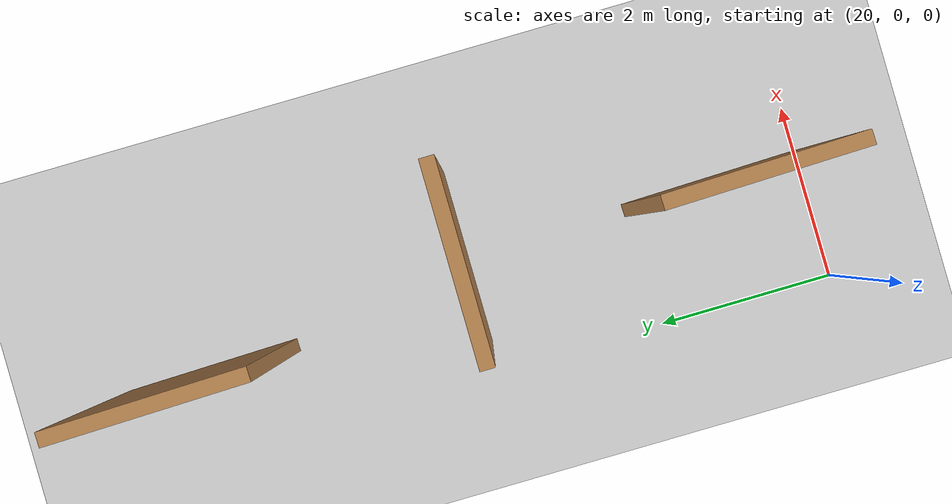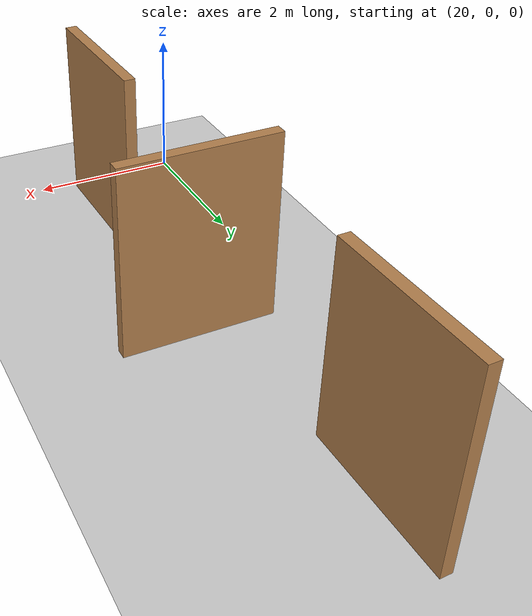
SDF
<sdf version="1.6">
 <world name="default">
  <model name="ground_plane">
   <static>1</static>
   <link name="link">
    <collision name="collision">
     <geometry><plane><normal>0 0 1</normal><size>100 100</size></plane></geometry>
     <surface><friction><ode><mu>100</mu><mu2>50</mu2></ode></friction></surface>
    </collision>
    <visual name="visual">
     <cast_shadows>0</cast_shadows>
     <geometry><plane><normal>0 0 1</normal><size>100 100</size></plane></geometry>
     <material>
      <script><uri>file://media/materials/scripts/gazebo.material</uri><name>Gazebo/Grey</name></script>
     </material>
    </visual>
   </link>
  </model>
  <model name="tr_maze_lay_1_clone_5_clone_12">
   <pose>21.3998 1.07768 0 0 0 -1.549</pose>
   <link name="Wall_21">
    <collision name="Wall_21_Collision">
     <geometry><box><size>2 0.15 2.5</size></box></geometry>
     <pose>0 0 1.25 0 -0 0</pose>
    </collision>
    <visual name="Wall_21_Visual">
     <pose>0 0 1.25 0 -0 0</pose>
     <geometry><box><size>2 0.15 2.5</size></box></geometry>
     <material>
      <script><uri>file://media/materials/scripts/gazebo.material</uri><name>Gazebo/Wood</name></script>
      <ambient>1 1 1 1</ambient>
     </material>
    </visual>
    <pose>0 0 0 0 -0 3.14159</pose>
   </link>
   <static>1</static>
  </model>
  <model name="tr_maze_lay_1_clone_5_clone_3_clone_1">
   <pose>20.9109 7.09053 0 0 0 -1.549</pose>
   <link name="Wall_21">
    <collision name="Wall_21_Collision">
     <geometry><box><size>2 0.15 2.5</size></box></geometry>
     <pose>0 0 1.25 0 -0 0</pose>
    </collision>
    <visual name="Wall_21_Visual">
     <pose>0 0 1.25 0 -0 0</pose>
     <geometry><box><size>2 0.15 2.5</size></box></geometry>
     <material>
      <script><uri>file://media/materials/scripts/gazebo.material</uri><name>Gazebo/Wood</name></script>
      <ambient>1 1 1 1</ambient>
     </material>
    </visual>
    <pose>0 0 0 0 -0 3.14159</pose>
   </link>
   <static>1</static>
  </model>
  <model name="tr_maze_lay_1_clone_15_clone_0">
   <pose>21.3708 4.00968 0 0 -0 0</pose>
   <link name="Wall_21">
    <collision name="Wall_21_Collision">
     <geometry><box><size>2 0.15 2.5</size></box></geometry>
     <pose>0 0 1.25 0 -0 0</pose>
    </collision>
    <visual name="Wall_21_Visual">
     <pose>0 0 1.25 0 -0 0</pose>
     <geometry><box><size>2 0.15 2.5</size></box></geometry>
     <material>
      <script><uri>file://media/materials/scripts/gazebo.material</uri><name>Gazebo/Wood</name></script>
      <ambient>1 1 1 1</ambient>
     </material>
    </visual>
    <pose>0 0 0 0 -0 3.14159</pose>
   </link>
   <static>1</static>
  </model>
 </world>
</sdf>
